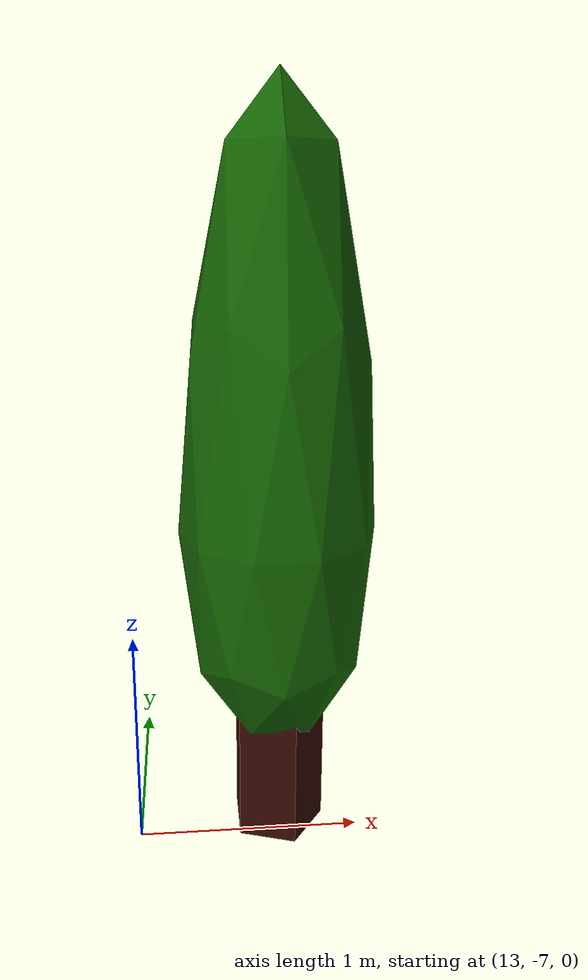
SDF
<sdf version="1.7">
<model name="lowpolytree_4">
    <static>true</static>
    <link name="lowpolytree_4">
        <pose>0 0 0 0 0 0</pose>
        <collision name="lowpolytree_4_collision">
            <geometry>
                <mesh>
                    <uri>model://lowpolytree_4/meshes/lowpolytree_4.dae</uri>
                </mesh>
            </geometry>
        </collision>
        <visual name="lowpolytree_4_visual">
            <geometry>
                <mesh>
                    <uri>model://lowpolytree_4/meshes/lowpolytree_4.dae</uri>
                </mesh>
            </geometry>
        </visual>
    </link>
</model>
</sdf>
